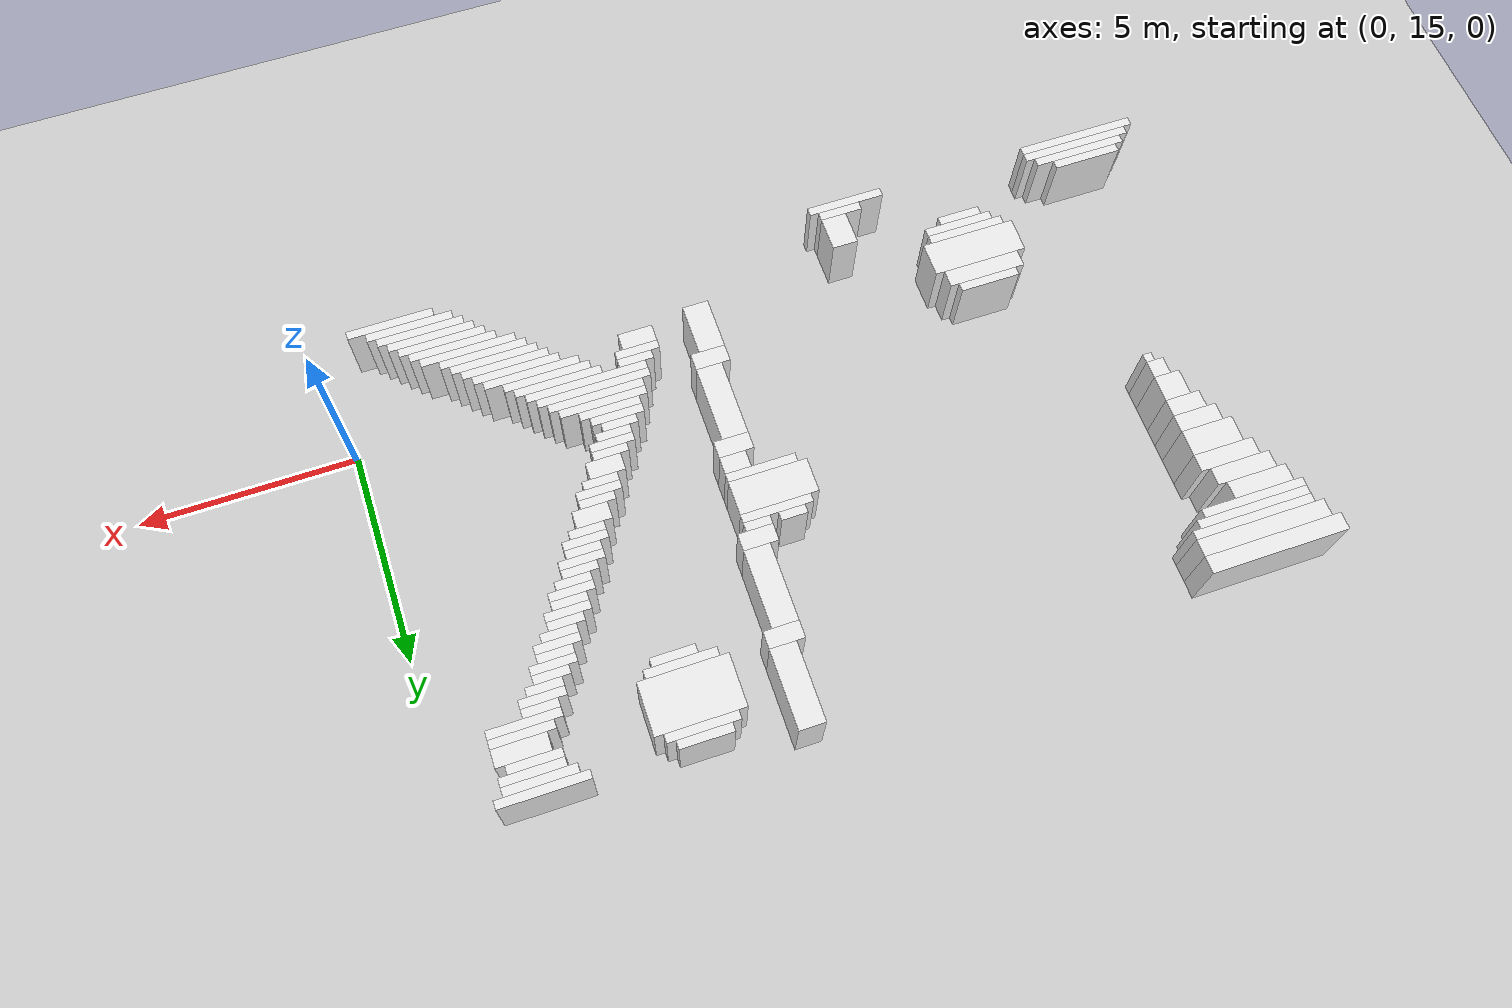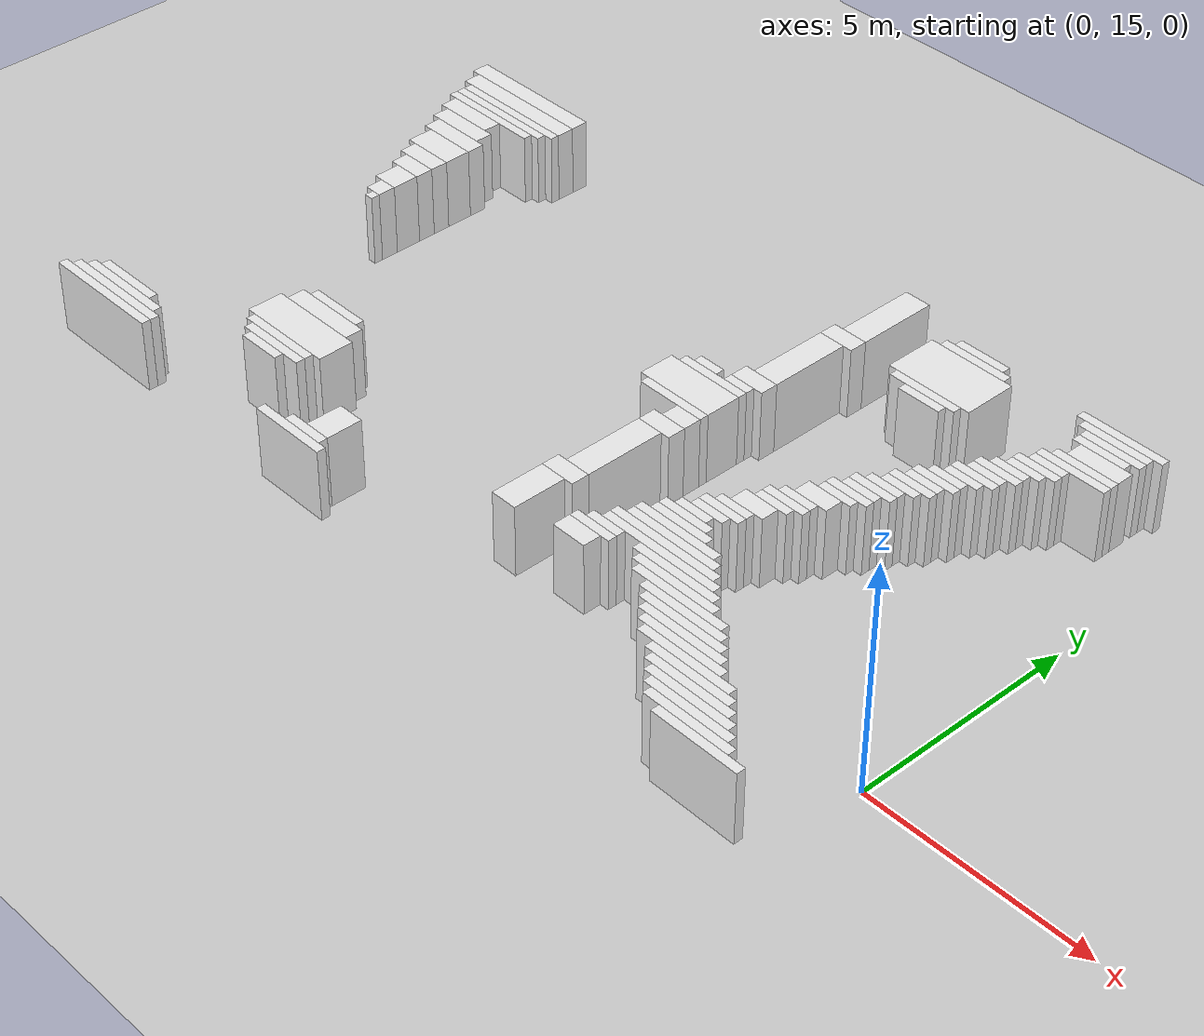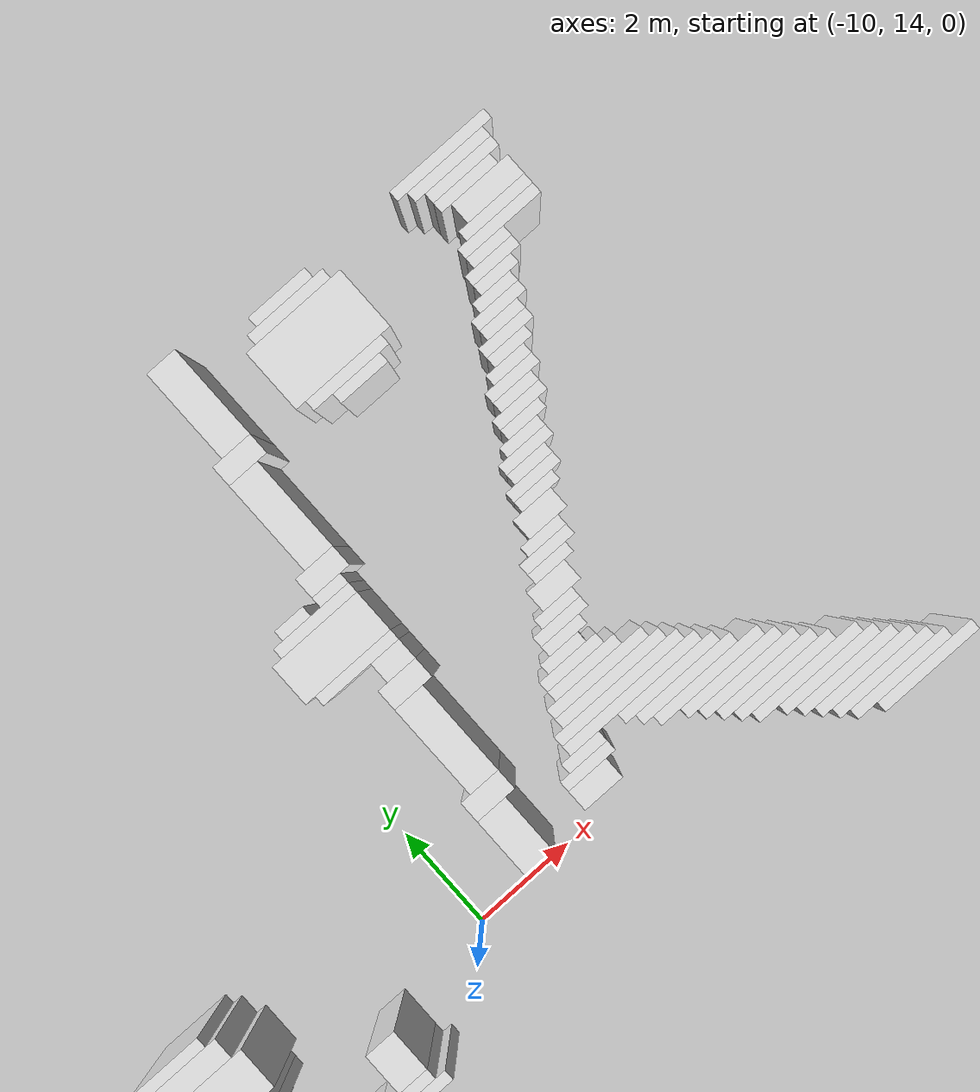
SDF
<sdf version="1.7">
 <world name="default">
  <model name="ground_plane">
   <static>1</static>
   <link name="link">
    <collision name="collision">
     <geometry><plane><normal>0 0 1</normal><size>120 120</size></plane></geometry>
    </collision>
    <visual name="visual">
     <geometry><plane><normal>0 0 1</normal><size>120 120</size></plane></geometry>
     <material>
      <script><uri>file://media/materials/scripts/gazebo.material</uri><name>Gazebo/Grey</name></script>
     </material>
    </visual>
   </link>
  </model>
  <model name="random_complex_03_model">
   <static>1</static>
   <link name="obs_769">
    <pose>-5.4000 23.9000 0.8000 0 0 0</pose>
    <collision name="obs_769_col"><geometry><box><size>1.2000 0.2000 1.6000</size></box></geometry></collision>
    <visual name="obs_769_vis">
     <geometry><box><size>1.2000 0.2000 1.6000</size></box></geometry>
     <material>
      <script><uri>file://media/materials/scripts/gazebo.material</uri><name>Gazebo/White</name></script>
     </material>
    </visual>
   </link>
   <link name="obs_770">
    <pose>-2.0000 23.9000 0.8000 0 0 0</pose>
    <collision name="obs_770_col"><geometry><box><size>2.0000 0.2000 1.6000</size></box></geometry></collision>
    <visual name="obs_770_vis">
     <geometry><box><size>2.0000 0.2000 1.6000</size></box></geometry>
     <material>
      <script><uri>file://media/materials/scripts/gazebo.material</uri><name>Gazebo/White</name></script>
     </material>
    </visual>
   </link>
   <link name="obs_775">
    <pose>-18.2000 23.8000 0.8000 0 0 0</pose>
    <collision name="obs_775_col"><geometry><box><size>3.2000 0.4000 1.6000</size></box></geometry></collision>
    <visual name="obs_775_vis">
     <geometry><box><size>3.2000 0.4000 1.6000</size></box></geometry>
     <material>
      <script><uri>file://media/materials/scripts/gazebo.material</uri><name>Gazebo/White</name></script>
     </material>
    </visual>
   </link>
   <link name="obs_778">
    <pose>-5.4000 23.7000 0.8000 0 0 0</pose>
    <collision name="obs_778_col"><geometry><box><size>1.6000 0.2000 1.6000</size></box></geometry></collision>
    <visual name="obs_778_vis">
     <geometry><box><size>1.6000 0.2000 1.6000</size></box></geometry>
     <material>
      <script><uri>file://media/materials/scripts/gazebo.material</uri><name>Gazebo/White</name></script>
     </material>
    </visual>
   </link>
   <link name="obs_779">
    <pose>-2.0000 23.7000 0.8000 0 0 0</pose>
    <collision name="obs_779_col"><geometry><box><size>1.6000 0.2000 1.6000</size></box></geometry></collision>
    <visual name="obs_779_vis">
     <geometry><box><size>1.6000 0.2000 1.6000</size></box></geometry>
     <material>
      <script><uri>file://media/materials/scripts/gazebo.material</uri><name>Gazebo/White</name></script>
     </material>
    </visual>
   </link>
   <link name="obs_783">
    <pose>-1.9000 23.5000 0.8000 0 0 0</pose>
    <collision name="obs_783_col"><geometry><box><size>1.4000 0.2000 1.6000</size></box></geometry></collision>
    <visual name="obs_783_vis">
     <geometry><box><size>1.4000 0.2000 1.6000</size></box></geometry>
     <material>
      <script><uri>file://media/materials/scripts/gazebo.material</uri><name>Gazebo/White</name></script>
     </material>
    </visual>
   </link>
   <link name="obs_790">
    <pose>-18.1000 23.4000 0.8000 0 0 0</pose>
    <collision name="obs_790_col"><geometry><box><size>3.0000 0.4000 1.6000</size></box></geometry></collision>
    <visual name="obs_790_vis">
     <geometry><box><size>3.0000 0.4000 1.6000</size></box></geometry>
     <material>
      <script><uri>file://media/materials/scripts/gazebo.material</uri><name>Gazebo/White</name></script>
     </material>
    </visual>
   </link>
   <link name="obs_792">
    <pose>-2.0000 23.3000 0.8000 0 0 0</pose>
    <collision name="obs_792_col"><geometry><box><size>1.2000 0.2000 1.6000</size></box></geometry></collision>
    <visual name="obs_792_vis">
     <geometry><box><size>1.2000 0.2000 1.6000</size></box></geometry>
     <material>
      <script><uri>file://media/materials/scripts/gazebo.material</uri><name>Gazebo/White</name></script>
     </material>
    </visual>
   </link>
   <link name="obs_801">
    <pose>-18.0000 23.1000 0.8000 0 0 0</pose>
    <collision name="obs_801_col"><geometry><box><size>2.8000 0.2000 1.6000</size></box></geometry></collision>
    <visual name="obs_801_vis">
     <geometry><box><size>2.8000 0.2000 1.6000</size></box></geometry>
     <material>
      <script><uri>file://media/materials/scripts/gazebo.material</uri><name>Gazebo/White</name></script>
     </material>
    </visual>
   </link>
   <link name="obs_806">
    <pose>-1.8000 23.0000 0.8000 0 0 0</pose>
    <collision name="obs_806_col"><geometry><box><size>1.2000 0.4000 1.6000</size></box></geometry></collision>
    <visual name="obs_806_vis">
     <geometry><box><size>1.2000 0.4000 1.6000</size></box></geometry>
     <material>
      <script><uri>file://media/materials/scripts/gazebo.material</uri><name>Gazebo/White</name></script>
     </material>
    </visual>
   </link>
   <link name="obs_809">
    <pose>-18.1000 22.9000 0.8000 0 0 0</pose>
    <collision name="obs_809_col"><geometry><box><size>2.6000 0.2000 1.6000</size></box></geometry></collision>
    <visual name="obs_809_vis">
     <geometry><box><size>2.6000 0.2000 1.6000</size></box></geometry>
     <material>
      <script><uri>file://media/materials/scripts/gazebo.material</uri><name>Gazebo/White</name></script>
     </material>
    </visual>
   </link>
   <link name="obs_815">
    <pose>-7.5000 23.5000 0.8000 0 0 0</pose>
    <collision name="obs_815_col"><geometry><box><size>0.6000 1.8000 1.6000</size></box></geometry></collision>
    <visual name="obs_815_vis">
     <geometry><box><size>0.6000 1.8000 1.6000</size></box></geometry>
     <material>
      <script><uri>file://media/materials/scripts/gazebo.material</uri><name>Gazebo/White</name></script>
     </material>
    </visual>
   </link>
   <link name="obs_819">
    <pose>-18.2000 22.7000 0.8000 0 0 0</pose>
    <collision name="obs_819_col"><geometry><box><size>2.4000 0.2000 1.6000</size></box></geometry></collision>
    <visual name="obs_819_vis">
     <geometry><box><size>2.4000 0.2000 1.6000</size></box></geometry>
     <material>
      <script><uri>file://media/materials/scripts/gazebo.material</uri><name>Gazebo/White</name></script>
     </material>
    </visual>
   </link>
   <link name="obs_820">
    <pose>-1.9000 22.7000 0.8000 0 0 0</pose>
    <collision name="obs_820_col"><geometry><box><size>1.4000 0.2000 1.6000</size></box></geometry></collision>
    <visual name="obs_820_vis">
     <geometry><box><size>1.4000 0.2000 1.6000</size></box></geometry>
     <material>
      <script><uri>file://media/materials/scripts/gazebo.material</uri><name>Gazebo/White</name></script>
     </material>
    </visual>
   </link>
   <link name="obs_826">
    <pose>-5.4000 23.0000 0.8000 0 0 0</pose>
    <collision name="obs_826_col"><geometry><box><size>2.0000 1.2000 1.6000</size></box></geometry></collision>
    <visual name="obs_826_vis">
     <geometry><box><size>2.0000 1.2000 1.6000</size></box></geometry>
     <material>
      <script><uri>file://media/materials/scripts/gazebo.material</uri><name>Gazebo/White</name></script>
     </material>
    </visual>
   </link>
   <link name="obs_829">
    <pose>-2.0000 22.5000 0.8000 0 0 0</pose>
    <collision name="obs_829_col"><geometry><box><size>1.6000 0.2000 1.6000</size></box></geometry></collision>
    <visual name="obs_829_vis">
     <geometry><box><size>1.6000 0.2000 1.6000</size></box></geometry>
     <material>
      <script><uri>file://media/materials/scripts/gazebo.material</uri><name>Gazebo/White</name></script>
     </material>
    </visual>
   </link>
   <link name="obs_834">
    <pose>-18.5000 22.4000 0.8000 0 0 0</pose>
    <collision name="obs_834_col"><geometry><box><size>1.4000 0.4000 1.6000</size></box></geometry></collision>
    <visual name="obs_834_vis">
     <geometry><box><size>1.4000 0.4000 1.6000</size></box></geometry>
     <material>
      <script><uri>file://media/materials/scripts/gazebo.material</uri><name>Gazebo/White</name></script>
     </material>
    </visual>
   </link>
   <link name="obs_835">
    <pose>-7.6000 22.4000 0.8000 0 0 0</pose>
    <collision name="obs_835_col"><geometry><box><size>0.8000 0.4000 1.6000</size></box></geometry></collision>
    <visual name="obs_835_vis">
     <geometry><box><size>0.8000 0.4000 1.6000</size></box></geometry>
     <material>
      <script><uri>file://media/materials/scripts/gazebo.material</uri><name>Gazebo/White</name></script>
     </material>
    </visual>
   </link>
   <link name="obs_838">
    <pose>-5.4000 22.3000 0.8000 0 0 0</pose>
    <collision name="obs_838_col"><geometry><box><size>1.6000 0.2000 1.6000</size></box></geometry></collision>
    <visual name="obs_838_vis">
     <geometry><box><size>1.6000 0.2000 1.6000</size></box></geometry>
     <material>
      <script><uri>file://media/materials/scripts/gazebo.material</uri><name>Gazebo/White</name></script>
     </material>
    </visual>
   </link>
   <link name="obs_839">
    <pose>-2.4000 22.3000 0.8000 0 0 0</pose>
    <collision name="obs_839_col"><geometry><box><size>0.8000 0.2000 1.6000</size></box></geometry></collision>
    <visual name="obs_839_vis">
     <geometry><box><size>0.8000 0.2000 1.6000</size></box></geometry>
     <material>
      <script><uri>file://media/materials/scripts/gazebo.material</uri><name>Gazebo/White</name></script>
     </material>
    </visual>
   </link>
   <link name="obs_846">
    <pose>-5.3000 22.1000 0.8000 0 0 0</pose>
    <collision name="obs_846_col"><geometry><box><size>1.0000 0.2000 1.6000</size></box></geometry></collision>
    <visual name="obs_846_vis">
     <geometry><box><size>1.0000 0.2000 1.6000</size></box></geometry>
     <material>
      <script><uri>file://media/materials/scripts/gazebo.material</uri><name>Gazebo/White</name></script>
     </material>
    </visual>
   </link>
   <link name="obs_847">
    <pose>-2.5000 22.1000 0.8000 0 0 0</pose>
    <collision name="obs_847_col"><geometry><box><size>1.0000 0.2000 1.6000</size></box></geometry></collision>
    <visual name="obs_847_vis">
     <geometry><box><size>1.0000 0.2000 1.6000</size></box></geometry>
     <material>
      <script><uri>file://media/materials/scripts/gazebo.material</uri><name>Gazebo/White</name></script>
     </material>
    </visual>
   </link>
   <link name="obs_853">
    <pose>-18.3000 22.0000 0.8000 0 0 0</pose>
    <collision name="obs_853_col"><geometry><box><size>1.4000 0.4000 1.6000</size></box></geometry></collision>
    <visual name="obs_853_vis">
     <geometry><box><size>1.4000 0.4000 1.6000</size></box></geometry>
     <material>
      <script><uri>file://media/materials/scripts/gazebo.material</uri><name>Gazebo/White</name></script>
     </material>
    </visual>
   </link>
   <link name="obs_856">
    <pose>-2.6000 21.9000 0.8000 0 0 0</pose>
    <collision name="obs_856_col"><geometry><box><size>0.8000 0.2000 1.6000</size></box></geometry></collision>
    <visual name="obs_856_vis">
     <geometry><box><size>0.8000 0.2000 1.6000</size></box></geometry>
     <material>
      <script><uri>file://media/materials/scripts/gazebo.material</uri><name>Gazebo/White</name></script>
     </material>
    </visual>
   </link>
   <link name="obs_865">
    <pose>-2.8000 21.7000 0.8000 0 0 0</pose>
    <collision name="obs_865_col"><geometry><box><size>0.8000 0.2000 1.6000</size></box></geometry></collision>
    <visual name="obs_865_vis">
     <geometry><box><size>0.8000 0.2000 1.6000</size></box></geometry>
     <material>
      <script><uri>file://media/materials/scripts/gazebo.material</uri><name>Gazebo/White</name></script>
     </material>
    </visual>
   </link>
   <link name="obs_870">
    <pose>-18.1000 21.6000 0.8000 0 0 0</pose>
    <collision name="obs_870_col"><geometry><box><size>1.4000 0.4000 1.6000</size></box></geometry></collision>
    <visual name="obs_870_vis">
     <geometry><box><size>1.4000 0.4000 1.6000</size></box></geometry>
     <material>
      <script><uri>file://media/materials/scripts/gazebo.material</uri><name>Gazebo/White</name></script>
     </material>
    </visual>
   </link>
   <link name="obs_874">
    <pose>-2.9000 21.5000 0.8000 0 0 0</pose>
    <collision name="obs_874_col"><geometry><box><size>1.0000 0.2000 1.6000</size></box></geometry></collision>
    <visual name="obs_874_vis">
     <geometry><box><size>1.0000 0.2000 1.6000</size></box></geometry>
     <material>
      <script><uri>file://media/materials/scripts/gazebo.material</uri><name>Gazebo/White</name></script>
     </material>
    </visual>
   </link>
   <link name="obs_882">
    <pose>-3.0000 21.3000 0.8000 0 0 0</pose>
    <collision name="obs_882_col"><geometry><box><size>0.8000 0.2000 1.6000</size></box></geometry></collision>
    <visual name="obs_882_vis">
     <geometry><box><size>0.8000 0.2000 1.6000</size></box></geometry>
     <material>
      <script><uri>file://media/materials/scripts/gazebo.material</uri><name>Gazebo/White</name></script>
     </material>
    </visual>
   </link>
   <link name="obs_892">
    <pose>-3.1000 21.1000 0.8000 0 0 0</pose>
    <collision name="obs_892_col"><geometry><box><size>1.0000 0.2000 1.6000</size></box></geometry></collision>
    <visual name="obs_892_vis">
     <geometry><box><size>1.0000 0.2000 1.6000</size></box></geometry>
     <material>
      <script><uri>file://media/materials/scripts/gazebo.material</uri><name>Gazebo/White</name></script>
     </material>
    </visual>
   </link>
   <link name="obs_899">
    <pose>-18.0000 21.1000 0.8000 0 0 0</pose>
    <collision name="obs_899_col"><geometry><box><size>1.2000 0.6000 1.6000</size></box></geometry></collision>
    <visual name="obs_899_vis">
     <geometry><box><size>1.2000 0.6000 1.6000</size></box></geometry>
     <material>
      <script><uri>file://media/materials/scripts/gazebo.material</uri><name>Gazebo/White</name></script>
     </material>
    </visual>
   </link>
   <link name="obs_903">
    <pose>-3.2000 20.9000 0.8000 0 0 0</pose>
    <collision name="obs_903_col"><geometry><box><size>0.8000 0.2000 1.6000</size></box></geometry></collision>
    <visual name="obs_903_vis">
     <geometry><box><size>0.8000 0.2000 1.6000</size></box></geometry>
     <material>
      <script><uri>file://media/materials/scripts/gazebo.material</uri><name>Gazebo/White</name></script>
     </material>
    </visual>
   </link>
   <link name="obs_914">
    <pose>-3.4000 20.7000 0.8000 0 0 0</pose>
    <collision name="obs_914_col"><geometry><box><size>0.8000 0.2000 1.6000</size></box></geometry></collision>
    <visual name="obs_914_vis">
     <geometry><box><size>0.8000 0.2000 1.6000</size></box></geometry>
     <material>
      <script><uri>file://media/materials/scripts/gazebo.material</uri><name>Gazebo/White</name></script>
     </material>
    </visual>
   </link>
   <link name="obs_921">
    <pose>-7.7000 21.3000 0.8000 0 0 0</pose>
    <collision name="obs_921_col"><geometry><box><size>0.6000 1.8000 1.6000</size></box></geometry></collision>
    <visual name="obs_921_vis">
     <geometry><box><size>0.6000 1.8000 1.6000</size></box></geometry>
     <material>
      <script><uri>file://media/materials/scripts/gazebo.material</uri><name>Gazebo/White</name></script>
     </material>
    </visual>
   </link>
   <link name="obs_923">
    <pose>-17.9000 20.6000 0.8000 0 0 0</pose>
    <collision name="obs_923_col"><geometry><box><size>1.0000 0.4000 1.6000</size></box></geometry></collision>
    <visual name="obs_923_vis">
     <geometry><box><size>1.0000 0.4000 1.6000</size></box></geometry>
     <material>
      <script><uri>file://media/materials/scripts/gazebo.material</uri><name>Gazebo/White</name></script>
     </material>
    </visual>
   </link>
   <link name="obs_925">
    <pose>-3.5000 20.5000 0.8000 0 0 0</pose>
    <collision name="obs_925_col"><geometry><box><size>1.0000 0.2000 1.6000</size></box></geometry></collision>
    <visual name="obs_925_vis">
     <geometry><box><size>1.0000 0.2000 1.6000</size></box></geometry>
     <material>
      <script><uri>file://media/materials/scripts/gazebo.material</uri><name>Gazebo/White</name></script>
     </material>
    </visual>
   </link>
   <link name="obs_936">
    <pose>-3.6000 20.3000 0.8000 0 0 0</pose>
    <collision name="obs_936_col"><geometry><box><size>0.8000 0.2000 1.6000</size></box></geometry></collision>
    <visual name="obs_936_vis">
     <geometry><box><size>0.8000 0.2000 1.6000</size></box></geometry>
     <material>
      <script><uri>file://media/materials/scripts/gazebo.material</uri><name>Gazebo/White</name></script>
     </material>
    </visual>
   </link>
   <link name="obs_942">
    <pose>-17.8000 20.2000 0.8000 0 0 0</pose>
    <collision name="obs_942_col"><geometry><box><size>0.8000 0.4000 1.6000</size></box></geometry></collision>
    <visual name="obs_942_vis">
     <geometry><box><size>0.8000 0.4000 1.6000</size></box></geometry>
     <material>
      <script><uri>file://media/materials/scripts/gazebo.material</uri><name>Gazebo/White</name></script>
     </material>
    </visual>
   </link>
   <link name="obs_943">
    <pose>-7.8000 20.2000 0.8000 0 0 0</pose>
    <collision name="obs_943_col"><geometry><box><size>0.8000 0.4000 1.6000</size></box></geometry></collision>
    <visual name="obs_943_vis">
     <geometry><box><size>0.8000 0.4000 1.6000</size></box></geometry>
     <material>
      <script><uri>file://media/materials/scripts/gazebo.material</uri><name>Gazebo/White</name></script>
     </material>
    </visual>
   </link>
   <link name="obs_947">
    <pose>-3.7000 20.1000 0.8000 0 0 0</pose>
    <collision name="obs_947_col"><geometry><box><size>1.0000 0.2000 1.6000</size></box></geometry></collision>
    <visual name="obs_947_vis">
     <geometry><box><size>1.0000 0.2000 1.6000</size></box></geometry>
     <material>
      <script><uri>file://media/materials/scripts/gazebo.material</uri><name>Gazebo/White</name></script>
     </material>
    </visual>
   </link>
   <link name="obs_957">
    <pose>-8.7000 19.9000 0.8000 0 0 0</pose>
    <collision name="obs_957_col"><geometry><box><size>0.6000 0.2000 1.6000</size></box></geometry></collision>
    <visual name="obs_957_vis">
     <geometry><box><size>0.6000 0.2000 1.6000</size></box></geometry>
     <material>
      <script><uri>file://media/materials/scripts/gazebo.material</uri><name>Gazebo/White</name></script>
     </material>
    </visual>
   </link>
   <link name="obs_958">
    <pose>-7.9000 19.9000 0.8000 0 0 0</pose>
    <collision name="obs_958_col"><geometry><box><size>0.6000 0.2000 1.6000</size></box></geometry></collision>
    <visual name="obs_958_vis">
     <geometry><box><size>0.6000 0.2000 1.6000</size></box></geometry>
     <material>
      <script><uri>file://media/materials/scripts/gazebo.material</uri><name>Gazebo/White</name></script>
     </material>
    </visual>
   </link>
   <link name="obs_959">
    <pose>-3.8000 19.9000 0.8000 0 0 0</pose>
    <collision name="obs_959_col"><geometry><box><size>0.8000 0.2000 1.6000</size></box></geometry></collision>
    <visual name="obs_959_vis">
     <geometry><box><size>0.8000 0.2000 1.6000</size></box></geometry>
     <material>
      <script><uri>file://media/materials/scripts/gazebo.material</uri><name>Gazebo/White</name></script>
     </material>
    </visual>
   </link>
   <link name="obs_968">
    <pose>-8.4000 19.7000 0.8000 0 0 0</pose>
    <collision name="obs_968_col"><geometry><box><size>1.6000 0.2000 1.6000</size></box></geometry></collision>
    <visual name="obs_968_vis">
     <geometry><box><size>1.6000 0.2000 1.6000</size></box></geometry>
     <material>
      <script><uri>file://media/materials/scripts/gazebo.material</uri><name>Gazebo/White</name></script>
     </material>
    </visual>
   </link>
   <link name="obs_969">
    <pose>-4.0000 19.7000 0.8000 0 0 0</pose>
    <collision name="obs_969_col"><geometry><box><size>0.8000 0.2000 1.6000</size></box></geometry></collision>
    <visual name="obs_969_vis">
     <geometry><box><size>0.8000 0.2000 1.6000</size></box></geometry>
     <material>
      <script><uri>file://media/materials/scripts/gazebo.material</uri><name>Gazebo/White</name></script>
     </material>
    </visual>
   </link>
   <link name="obs_977">
    <pose>-17.7000 19.7000 0.8000 0 0 0</pose>
    <collision name="obs_977_col"><geometry><box><size>0.6000 0.6000 1.6000</size></box></geometry></collision>
    <visual name="obs_977_vis">
     <geometry><box><size>0.6000 0.6000 1.6000</size></box></geometry>
     <material>
      <script><uri>file://media/materials/scripts/gazebo.material</uri><name>Gazebo/White</name></script>
     </material>
    </visual>
   </link>
   <link name="obs_981">
    <pose>-4.1000 19.5000 0.8000 0 0 0</pose>
    <collision name="obs_981_col"><geometry><box><size>1.0000 0.2000 1.6000</size></box></geometry></collision>
    <visual name="obs_981_vis">
     <geometry><box><size>1.0000 0.2000 1.6000</size></box></geometry>
     <material>
      <script><uri>file://media/materials/scripts/gazebo.material</uri><name>Gazebo/White</name></script>
     </material>
    </visual>
   </link>
   <link name="obs_991">
    <pose>-4.2000 19.3000 0.8000 0 0 0</pose>
    <collision name="obs_991_col"><geometry><box><size>0.8000 0.2000 1.6000</size></box></geometry></collision>
    <visual name="obs_991_vis">
     <geometry><box><size>0.8000 0.2000 1.6000</size></box></geometry>
     <material>
      <script><uri>file://media/materials/scripts/gazebo.material</uri><name>Gazebo/White</name></script>
     </material>
    </visual>
   </link>
   <link name="obs_998">
    <pose>-17.6000 19.2000 0.8000 0 0 0</pose>
    <collision name="obs_998_col"><geometry><box><size>0.4000 0.4000 1.6000</size></box></geometry></collision>
    <visual name="obs_998_vis">
     <geometry><box><size>0.4000 0.4000 1.6000</size></box></geometry>
     <material>
      <script><uri>file://media/materials/scripts/gazebo.material</uri><name>Gazebo/White</name></script>
     </material>
    </visual>
   </link>
   <link name="obs_1002">
    <pose>-4.3000 19.1000 0.8000 0 0 0</pose>
    <collision name="obs_1002_col"><geometry><box><size>1.0000 0.2000 1.6000</size></box></geometry></collision>
    <visual name="obs_1002_vis">
     <geometry><box><size>1.0000 0.2000 1.6000</size></box></geometry>
     <material>
      <script><uri>file://media/materials/scripts/gazebo.material</uri><name>Gazebo/White</name></script>
     </material>
    </visual>
   </link>
   <link name="obs_1008">
    <pose>-8.5000 19.2000 0.8000 0 0 0</pose>
    <collision name="obs_1008_col"><geometry><box><size>1.8000 0.8000 1.6000</size></box></geometry></collision>
    <visual name="obs_1008_vis">
     <geometry><box><size>1.8000 0.8000 1.6000</size></box></geometry>
     <material>
      <script><uri>file://media/materials/scripts/gazebo.material</uri><name>Gazebo/White</name></script>
     </material>
    </visual>
   </link>
   <link name="obs_1010">
    <pose>-17.5000 18.9000 0.8000 0 0 0</pose>
    <collision name="obs_1010_col"><geometry><box><size>0.2000 0.2000 1.6000</size></box></geometry></collision>
    <visual name="obs_1010_vis">
     <geometry><box><size>0.2000 0.2000 1.6000</size></box></geometry>
     <material>
      <script><uri>file://media/materials/scripts/gazebo.material</uri><name>Gazebo/White</name></script>
     </material>
    </visual>
   </link>
   <link name="obs_1011">
    <pose>-4.4000 18.9000 0.8000 0 0 0</pose>
    <collision name="obs_1011_col"><geometry><box><size>0.8000 0.2000 1.6000</size></box></geometry></collision>
    <visual name="obs_1011_vis">
     <geometry><box><size>0.8000 0.2000 1.6000</size></box></geometry>
     <material>
      <script><uri>file://media/materials/scripts/gazebo.material</uri><name>Gazebo/White</name></script>
     </material>
    </visual>
   </link>
   <link name="obs_1019">
    <pose>-8.4000 18.7000 0.8000 0 0 0</pose>
    <collision name="obs_1019_col"><geometry><box><size>1.6000 0.2000 1.6000</size></box></geometry></collision>
    <visual name="obs_1019_vis">
     <geometry><box><size>1.6000 0.2000 1.6000</size></box></geometry>
     <material>
      <script><uri>file://media/materials/scripts/gazebo.material</uri><name>Gazebo/White</name></script>
     </material>
    </visual>
   </link>
   <link name="obs_1027">
    <pose>-4.6000 18.6000 0.8000 0 0 0</pose>
    <collision name="obs_1027_col"><geometry><box><size>0.8000 0.4000 1.6000</size></box></geometry></collision>
    <visual name="obs_1027_vis">
     <geometry><box><size>0.8000 0.4000 1.6000</size></box></geometry>
     <material>
      <script><uri>file://media/materials/scripts/gazebo.material</uri><name>Gazebo/White</name></script>
     </material>
    </visual>
   </link>
   <link name="obs_1036">
    <pose>-7.9000 18.4000 0.8000 0 0 0</pose>
    <collision name="obs_1036_col"><geometry><box><size>0.6000 0.4000 1.6000</size></box></geometry></collision>
    <visual name="obs_1036_vis">
     <geometry><box><size>0.6000 0.4000 1.6000</size></box></geometry>
     <material>
      <script><uri>file://media/materials/scripts/gazebo.material</uri><name>Gazebo/White</name></script>
     </material>
    </visual>
   </link>
   <link name="obs_1039">
    <pose>-4.8000 18.3000 0.8000 0 0 0</pose>
    <collision name="obs_1039_col"><geometry><box><size>0.8000 0.2000 1.6000</size></box></geometry></collision>
    <visual name="obs_1039_vis">
     <geometry><box><size>0.8000 0.2000 1.6000</size></box></geometry>
     <material>
      <script><uri>file://media/materials/scripts/gazebo.material</uri><name>Gazebo/White</name></script>
     </material>
    </visual>
   </link>
   <link name="obs_1047">
    <pose>-4.9000 18.1000 0.8000 0 0 0</pose>
    <collision name="obs_1047_col"><geometry><box><size>1.0000 0.2000 1.6000</size></box></geometry></collision>
    <visual name="obs_1047_vis">
     <geometry><box><size>1.0000 0.2000 1.6000</size></box></geometry>
     <material>
      <script><uri>file://media/materials/scripts/gazebo.material</uri><name>Gazebo/White</name></script>
     </material>
    </visual>
   </link>
   <link name="obs_1054">
    <pose>-8.0000 18.0000 0.8000 0 0 0</pose>
    <collision name="obs_1054_col"><geometry><box><size>0.8000 0.4000 1.6000</size></box></geometry></collision>
    <visual name="obs_1054_vis">
     <geometry><box><size>0.8000 0.4000 1.6000</size></box></geometry>
     <material>
      <script><uri>file://media/materials/scripts/gazebo.material</uri><name>Gazebo/White</name></script>
     </material>
    </visual>
   </link>
   <link name="obs_1058">
    <pose>-5.0000 17.9000 0.8000 0 0 0</pose>
    <collision name="obs_1058_col"><geometry><box><size>0.8000 0.2000 1.6000</size></box></geometry></collision>
    <visual name="obs_1058_vis">
     <geometry><box><size>0.8000 0.2000 1.6000</size></box></geometry>
     <material>
      <script><uri>file://media/materials/scripts/gazebo.material</uri><name>Gazebo/White</name></script>
     </material>
    </visual>
   </link>
   <link name="obs_1074">
    <pose>-5.2000 17.6000 0.8000 0 0 0</pose>
    <collision name="obs_1074_col"><geometry><box><size>0.8000 0.4000 1.6000</size></box></geometry></collision>
    <visual name="obs_1074_vis">
     <geometry><box><size>0.8000 0.4000 1.6000</size></box></geometry>
     <material>
      <script><uri>file://media/materials/scripts/gazebo.material</uri><name>Gazebo/White</name></script>
     </material>
    </visual>
   </link>
   <link name="obs_1084">
    <pose>-5.4000 17.3000 0.8000 0 0 0</pose>
    <collision name="obs_1084_col"><geometry><box><size>0.8000 0.2000 1.6000</size></box></geometry></collision>
    <visual name="obs_1084_vis">
     <geometry><box><size>0.8000 0.2000 1.6000</size></box></geometry>
     <material>
      <script><uri>file://media/materials/scripts/gazebo.material</uri><name>Gazebo/White</name></script>
     </material>
    </visual>
   </link>
   <link name="obs_1092">
    <pose>-5.5000 17.1000 0.8000 0 0 0</pose>
    <collision name="obs_1092_col"><geometry><box><size>1.0000 0.2000 1.6000</size></box></geometry></collision>
    <visual name="obs_1092_vis">
     <geometry><box><size>1.0000 0.2000 1.6000</size></box></geometry>
     <material>
      <script><uri>file://media/materials/scripts/gazebo.material</uri><name>Gazebo/White</name></script>
     </material>
    </visual>
   </link>
   <link name="obs_1099">
    <pose>-5.6000 16.9000 0.8000 0 0 0</pose>
    <collision name="obs_1099_col"><geometry><box><size>0.8000 0.2000 1.6000</size></box></geometry></collision>
    <visual name="obs_1099_vis">
     <geometry><box><size>0.8000 0.2000 1.6000</size></box></geometry>
     <material>
      <script><uri>file://media/materials/scripts/gazebo.material</uri><name>Gazebo/White</name></script>
     </material>
    </visual>
   </link>
   <link name="obs_1105">
    <pose>-5.8000 16.7000 0.8000 0 0 0</pose>
    <collision name="obs_1105_col"><geometry><box><size>0.8000 0.2000 1.6000</size></box></geometry></collision>
    <visual name="obs_1105_vis">
     <geometry><box><size>0.8000 0.2000 1.6000</size></box></geometry>
     <material>
      <script><uri>file://media/materials/scripts/gazebo.material</uri><name>Gazebo/White</name></script>
     </material>
    </visual>
   </link>
   <link name="obs_1112">
    <pose>-5.8000 16.5000 0.8000 0 0 0</pose>
    <collision name="obs_1112_col"><geometry><box><size>1.2000 0.2000 1.6000</size></box></geometry></collision>
    <visual name="obs_1112_vis">
     <geometry><box><size>1.2000 0.2000 1.6000</size></box></geometry>
     <material>
      <script><uri>file://media/materials/scripts/gazebo.material</uri><name>Gazebo/White</name></script>
     </material>
    </visual>
   </link>
   <link name="obs_1118">
    <pose>-5.7000 16.3000 0.8000 0 0 0</pose>
    <collision name="obs_1118_col"><geometry><box><size>1.4000 0.2000 1.6000</size></box></geometry></collision>
    <visual name="obs_1118_vis">
     <geometry><box><size>1.4000 0.2000 1.6000</size></box></geometry>
     <material>
      <script><uri>file://media/materials/scripts/gazebo.material</uri><name>Gazebo/White</name></script>
     </material>
    </visual>
   </link>
   <link name="obs_1121">
    <pose>-8.1000 16.9000 0.8000 0 0 0</pose>
    <collision name="obs_1121_col"><geometry><box><size>0.6000 1.8000 1.6000</size></box></geometry></collision>
    <visual name="obs_1121_vis">
     <geometry><box><size>0.6000 1.8000 1.6000</size></box></geometry>
     <material>
      <script><uri>file://media/materials/scripts/gazebo.material</uri><name>Gazebo/White</name></script>
     </material>
    </visual>
   </link>
   <link name="obs_1124">
    <pose>-5.6000 16.1000 0.8000 0 0 0</pose>
    <collision name="obs_1124_col"><geometry><box><size>2.0000 0.2000 1.6000</size></box></geometry></collision>
    <visual name="obs_1124_vis">
     <geometry><box><size>2.0000 0.2000 1.6000</size></box></geometry>
     <material>
      <script><uri>file://media/materials/scripts/gazebo.material</uri><name>Gazebo/White</name></script>
     </material>
    </visual>
   </link>
   <link name="obs_1130">
    <pose>-14.9000 15.9000 0.8000 0 0 0</pose>
    <collision name="obs_1130_col"><geometry><box><size>1.4000 0.2000 1.6000</size></box></geometry></collision>
    <visual name="obs_1130_vis">
     <geometry><box><size>1.4000 0.2000 1.6000</size></box></geometry>
     <material>
      <script><uri>file://media/materials/scripts/gazebo.material</uri><name>Gazebo/White</name></script>
     </material>
    </visual>
   </link>
   <link name="obs_1131">
    <pose>-5.5000 15.9000 0.8000 0 0 0</pose>
    <collision name="obs_1131_col"><geometry><box><size>2.2000 0.2000 1.6000</size></box></geometry></collision>
    <visual name="obs_1131_vis">
     <geometry><box><size>2.2000 0.2000 1.6000</size></box></geometry>
     <material>
      <script><uri>file://media/materials/scripts/gazebo.material</uri><name>Gazebo/White</name></script>
     </material>
    </visual>
   </link>
   <link name="obs_1135">
    <pose>-8.2000 15.8000 0.8000 0 0 0</pose>
    <collision name="obs_1135_col"><geometry><box><size>0.8000 0.4000 1.6000</size></box></geometry></collision>
    <visual name="obs_1135_vis">
     <geometry><box><size>0.8000 0.4000 1.6000</size></box></geometry>
     <material>
      <script><uri>file://media/materials/scripts/gazebo.material</uri><name>Gazebo/White</name></script>
     </material>
    </visual>
   </link>
   <link name="obs_1137">
    <pose>-5.5000 15.7000 0.8000 0 0 0</pose>
    <collision name="obs_1137_col"><geometry><box><size>2.6000 0.2000 1.6000</size></box></geometry></collision>
    <visual name="obs_1137_vis">
     <geometry><box><size>2.6000 0.2000 1.6000</size></box></geometry>
     <material>
      <script><uri>file://media/materials/scripts/gazebo.material</uri><name>Gazebo/White</name></script>
     </material>
    </visual>
   </link>
   <link name="obs_1139">
    <pose>-14.9000 15.6000 0.8000 0 0 0</pose>
    <collision name="obs_1139_col"><geometry><box><size>1.8000 0.4000 1.6000</size></box></geometry></collision>
    <visual name="obs_1139_vis">
     <geometry><box><size>1.8000 0.4000 1.6000</size></box></geometry>
     <material>
      <script><uri>file://media/materials/scripts/gazebo.material</uri><name>Gazebo/White</name></script>
     </material>
    </visual>
   </link>
   <link name="obs_1140">
    <pose>-5.4000 15.5000 0.8000 0 0 0</pose>
    <collision name="obs_1140_col"><geometry><box><size>2.8000 0.2000 1.6000</size></box></geometry></collision>
    <visual name="obs_1140_vis">
     <geometry><box><size>2.8000 0.2000 1.6000</size></box></geometry>
     <material>
      <script><uri>file://media/materials/scripts/gazebo.material</uri><name>Gazebo/White</name></script>
     </material>
    </visual>
   </link>
   <link name="obs_1144">
    <pose>-6.6000 15.3000 0.8000 0 0 0</pose>
    <collision name="obs_1144_col"><geometry><box><size>0.8000 0.2000 1.6000</size></box></geometry></collision>
    <visual name="obs_1144_vis">
     <geometry><box><size>0.8000 0.2000 1.6000</size></box></geometry>
     <material>
      <script><uri>file://media/materials/scripts/gazebo.material</uri><name>Gazebo/White</name></script>
     </material>
    </visual>
   </link>
   <link name="obs_1145">
    <pose>-4.8000 15.3000 0.8000 0 0 0</pose>
    <collision name="obs_1145_col"><geometry><box><size>2.0000 0.2000 1.6000</size></box></geometry></collision>
    <visual name="obs_1145_vis">
     <geometry><box><size>2.0000 0.2000 1.6000</size></box></geometry>
     <material>
      <script><uri>file://media/materials/scripts/gazebo.material</uri><name>Gazebo/White</name></script>
     </material>
    </visual>
   </link>
   <link name="obs_1148">
    <pose>-6.7000 15.1000 0.8000 0 0 0</pose>
    <collision name="obs_1148_col"><geometry><box><size>1.0000 0.2000 1.6000</size></box></geometry></collision>
    <visual name="obs_1148_vis">
     <geometry><box><size>1.0000 0.2000 1.6000</size></box></geometry>
     <material>
      <script><uri>file://media/materials/scripts/gazebo.material</uri><name>Gazebo/White</name></script>
     </material>
    </visual>
   </link>
   <link name="obs_1149">
    <pose>-4.6000 15.1000 0.8000 0 0 0</pose>
    <collision name="obs_1149_col"><geometry><box><size>2.0000 0.2000 1.6000</size></box></geometry></collision>
    <visual name="obs_1149_vis">
     <geometry><box><size>2.0000 0.2000 1.6000</size></box></geometry>
     <material>
      <script><uri>file://media/materials/scripts/gazebo.material</uri><name>Gazebo/White</name></script>
     </material>
    </visual>
   </link>
   <link name="obs_1153">
    <pose>-4.3000 14.9000 0.8000 0 0 0</pose>
    <collision name="obs_1153_col"><geometry><box><size>2.2000 0.2000 1.6000</size></box></geometry></collision>
    <visual name="obs_1153_vis">
     <geometry><box><size>2.2000 0.2000 1.6000</size></box></geometry>
     <material>
      <script><uri>file://media/materials/scripts/gazebo.material</uri><name>Gazebo/White</name></script>
     </material>
    </visual>
   </link>
   <link name="obs_1155">
    <pose>-14.9000 15.0000 0.8000 0 0 0</pose>
    <collision name="obs_1155_col"><geometry><box><size>2.2000 0.8000 1.6000</size></box></geometry></collision>
    <visual name="obs_1155_vis">
     <geometry><box><size>2.2000 0.8000 1.6000</size></box></geometry>
     <material>
      <script><uri>file://media/materials/scripts/gazebo.material</uri><name>Gazebo/White</name></script>
     </material>
    </visual>
   </link>
   <link name="obs_1156">
    <pose>-6.8000 14.8000 0.8000 0 0 0</pose>
    <collision name="obs_1156_col"><geometry><box><size>0.8000 0.4000 1.6000</size></box></geometry></collision>
    <visual name="obs_1156_vis">
     <geometry><box><size>0.8000 0.4000 1.6000</size></box></geometry>
     <material>
      <script><uri>file://media/materials/scripts/gazebo.material</uri><name>Gazebo/White</name></script>
     </material>
    </visual>
   </link>
   <link name="obs_1159">
    <pose>-4.0000 14.7000 0.8000 0 0 0</pose>
    <collision name="obs_1159_col"><geometry><box><size>2.0000 0.2000 1.6000</size></box></geometry></collision>
    <visual name="obs_1159_vis">
     <geometry><box><size>2.0000 0.2000 1.6000</size></box></geometry>
     <material>
      <script><uri>file://media/materials/scripts/gazebo.material</uri><name>Gazebo/White</name></script>
     </material>
    </visual>
   </link>
   <link name="obs_1162">
    <pose>-8.3000 15.0000 0.8000 0 0 0</pose>
    <collision name="obs_1162_col"><geometry><box><size>0.6000 1.2000 1.6000</size></box></geometry></collision>
    <visual name="obs_1162_vis">
     <geometry><box><size>0.6000 1.2000 1.6000</size></box></geometry>
     <material>
      <script><uri>file://media/materials/scripts/gazebo.material</uri><name>Gazebo/White</name></script>
     </material>
    </visual>
   </link>
   <link name="obs_1164">
    <pose>-14.9000 14.5000 0.8000 0 0 0</pose>
    <collision name="obs_1164_col"><geometry><box><size>1.8000 0.2000 1.6000</size></box></geometry></collision>
    <visual name="obs_1164_vis">
     <geometry><box><size>1.8000 0.2000 1.6000</size></box></geometry>
     <material>
      <script><uri>file://media/materials/scripts/gazebo.material</uri><name>Gazebo/White</name></script>
     </material>
    </visual>
   </link>
   <link name="obs_1165">
    <pose>-3.8000 14.5000 0.8000 0 0 0</pose>
    <collision name="obs_1165_col"><geometry><box><size>2.0000 0.2000 1.6000</size></box></geometry></collision>
    <visual name="obs_1165_vis">
     <geometry><box><size>2.0000 0.2000 1.6000</size></box></geometry>
     <material>
      <script><uri>file://media/materials/scripts/gazebo.material</uri><name>Gazebo/White</name></script>
     </material>
    </visual>
   </link>
   <link name="obs_1169">
    <pose>-14.8000 14.3000 0.8000 0 0 0</pose>
    <collision name="obs_1169_col"><geometry><box><size>1.6000 0.2000 1.6000</size></box></geometry></collision>
    <visual name="obs_1169_vis">
     <geometry><box><size>1.6000 0.2000 1.6000</size></box></geometry>
     <material>
      <script><uri>file://media/materials/scripts/gazebo.material</uri><name>Gazebo/White</name></script>
     </material>
    </visual>
   </link>
   <link name="obs_1170">
    <pose>-3.6000 14.3000 0.8000 0 0 0</pose>
    <collision name="obs_1170_col"><geometry><box><size>2.0000 0.2000 1.6000</size></box></geometry></collision>
    <visual name="obs_1170_vis">
     <geometry><box><size>2.0000 0.2000 1.6000</size></box></geometry>
     <material>
      <script><uri>file://media/materials/scripts/gazebo.material</uri><name>Gazebo/White</name></script>
     </material>
    </visual>
   </link>
   <link name="obs_1173">
    <pose>-14.9000 14.1000 0.8000 0 0 0</pose>
    <collision name="obs_1173_col"><geometry><box><size>1.0000 0.2000 1.6000</size></box></geometry></collision>
    <visual name="obs_1173_vis">
     <geometry><box><size>1.0000 0.2000 1.6000</size></box></geometry>
     <material>
      <script><uri>file://media/materials/scripts/gazebo.material</uri><name>Gazebo/White</name></script>
     </material>
    </visual>
   </link>
   <link name="obs_1174">
    <pose>-3.4000 14.1000 0.8000 0 0 0</pose>
    <collision name="obs_1174_col"><geometry><box><size>2.0000 0.2000 1.6000</size></box></geometry></collision>
    <visual name="obs_1174_vis">
     <geometry><box><size>2.0000 0.2000 1.6000</size></box></geometry>
     <material>
      <script><uri>file://media/materials/scripts/gazebo.material</uri><name>Gazebo/White</name></script>
     </material>
    </visual>
   </link>
   <link name="obs_1178">
    <pose>-3.1000 13.9000 0.8000 0 0 0</pose>
    <collision name="obs_1178_col"><geometry><box><size>2.2000 0.2000 1.6000</size></box></geometry></collision>
    <visual name="obs_1178_vis">
     <geometry><box><size>2.2000 0.2000 1.6000</size></box></geometry>
     <material>
      <script><uri>file://media/materials/scripts/gazebo.material</uri><name>Gazebo/White</name></script>
     </material>
    </visual>
   </link>
   <link name="obs_1181">
    <pose>-2.8000 13.7000 0.8000 0 0 0</pose>
    <collision name="obs_1181_col"><geometry><box><size>2.0000 0.2000 1.6000</size></box></geometry></collision>
    <visual name="obs_1181_vis">
     <geometry><box><size>2.0000 0.2000 1.6000</size></box></geometry>
     <material>
      <script><uri>file://media/materials/scripts/gazebo.material</uri><name>Gazebo/White</name></script>
     </material>
    </visual>
   </link>
   <link name="obs_1185">
    <pose>-18.4000 13.5000 0.8000 0 0 0</pose>
    <collision name="obs_1185_col"><geometry><box><size>1.6000 0.2000 1.6000</size></box></geometry></collision>
    <visual name="obs_1185_vis">
     <geometry><box><size>1.6000 0.2000 1.6000</size></box></geometry>
     <material>
      <script><uri>file://media/materials/scripts/gazebo.material</uri><name>Gazebo/White</name></script>
     </material>
    </visual>
   </link>
   <link name="obs_1186">
    <pose>-2.6000 13.5000 0.8000 0 0 0</pose>
    <collision name="obs_1186_col"><geometry><box><size>2.0000 0.2000 1.6000</size></box></geometry></collision>
    <visual name="obs_1186_vis">
     <geometry><box><size>2.0000 0.2000 1.6000</size></box></geometry>
     <material>
      <script><uri>file://media/materials/scripts/gazebo.material</uri><name>Gazebo/White</name></script>
     </material>
    </visual>
   </link>
   <link name="obs_1190">
    <pose>-12.1000 13.6000 0.8000 0 0 0</pose>
    <collision name="obs_1190_col"><geometry><box><size>0.6000 0.8000 1.6000</size></box></geometry></collision>
    <visual name="obs_1190_vis">
     <geometry><box><size>0.6000 0.8000 1.6000</size></box></geometry>
     <material>
      <script><uri>file://media/materials/scripts/gazebo.material</uri><name>Gazebo/White</name></script>
     </material>
    </visual>
   </link>
   <link name="obs_1192">
    <pose>-18.3000 13.3000 0.8000 0 0 0</pose>
    <collision name="obs_1192_col"><geometry><box><size>2.2000 0.2000 1.6000</size></box></geometry></collision>
    <visual name="obs_1192_vis">
     <geometry><box><size>2.2000 0.2000 1.6000</size></box></geometry>
     <material>
      <script><uri>file://media/materials/scripts/gazebo.material</uri><name>Gazebo/White</name></script>
     </material>
    </visual>
   </link>
   <link name="obs_1193">
    <pose>-2.4000 13.3000 0.8000 0 0 0</pose>
    <collision name="obs_1193_col"><geometry><box><size>2.0000 0.2000 1.6000</size></box></geometry></collision>
    <visual name="obs_1193_vis">
     <geometry><box><size>2.0000 0.2000 1.6000</size></box></geometry>
     <material>
      <script><uri>file://media/materials/scripts/gazebo.material</uri><name>Gazebo/White</name></script>
     </material>
    </visual>
   </link>
   <link name="obs_1198">
    <pose>-18.3000 13.1000 0.8000 0 0 0</pose>
    <collision name="obs_1198_col"><geometry><box><size>2.6000 0.2000 1.6000</size></box></geometry></collision>
    <visual name="obs_1198_vis">
     <geometry><box><size>2.6000 0.2000 1.6000</size></box></geometry>
     <material>
      <script><uri>file://media/materials/scripts/gazebo.material</uri><name>Gazebo/White</name></script>
     </material>
    </visual>
   </link>
   <link name="obs_1199">
    <pose>-12.3000 13.1000 0.8000 0 0 0</pose>
    <collision name="obs_1199_col"><geometry><box><size>1.0000 0.2000 1.6000</size></box></geometry></collision>
    <visual name="obs_1199_vis">
     <geometry><box><size>1.0000 0.2000 1.6000</size></box></geometry>
     <material>
      <script><uri>file://media/materials/scripts/gazebo.material</uri><name>Gazebo/White</name></script>
     </material>
    </visual>
   </link>
   <link name="obs_1200">
    <pose>-2.2000 13.1000 0.8000 0 0 0</pose>
    <collision name="obs_1200_col"><geometry><box><size>2.0000 0.2000 1.6000</size></box></geometry></collision>
    <visual name="obs_1200_vis">
     <geometry><box><size>2.0000 0.2000 1.6000</size></box></geometry>
     <material>
      <script><uri>file://media/materials/scripts/gazebo.material</uri><name>Gazebo/White</name></script>
     </material>
    </visual>
   </link>
   <link name="obs_1202">
    <pose>-18.4000 12.9000 0.8000 0 0 0</pose>
    <collision name="obs_1202_col"><geometry><box><size>2.8000 0.2000 1.6000</size></box></geometry></collision>
    <visual name="obs_1202_vis">
     <geometry><box><size>2.8000 0.2000 1.6000</size></box></geometry>
     <material>
      <script><uri>file://media/materials/scripts/gazebo.material</uri><name>Gazebo/White</name></script>
     </material>
    </visual>
   </link>
   <link name="obs_1203">
    <pose>-12.5000 12.9000 0.8000 0 0 0</pose>
    <collision name="obs_1203_col"><geometry><box><size>1.8000 0.2000 1.6000</size></box></geometry></collision>
    <visual name="obs_1203_vis">
     <geometry><box><size>1.8000 0.2000 1.6000</size></box></geometry>
     <material>
      <script><uri>file://media/materials/scripts/gazebo.material</uri><name>Gazebo/White</name></script>
     </material>
    </visual>
   </link>
   <link name="obs_1204">
    <pose>-2.0000 12.9000 0.8000 0 0 0</pose>
    <collision name="obs_1204_col"><geometry><box><size>2.0000 0.2000 1.6000</size></box></geometry></collision>
    <visual name="obs_1204_vis">
     <geometry><box><size>2.0000 0.2000 1.6000</size></box></geometry>
     <material>
      <script><uri>file://media/materials/scripts/gazebo.material</uri><name>Gazebo/White</name></script>
     </material>
    </visual>
   </link>
   <link name="obs_1209">
    <pose>-1.6000 12.7000 0.8000 0 0 0</pose>
    <collision name="obs_1209_col"><geometry><box><size>2.0000 0.2000 1.6000</size></box></geometry></collision>
    <visual name="obs_1209_vis">
     <geometry><box><size>2.0000 0.2000 1.6000</size></box></geometry>
     <material>
      <script><uri>file://media/materials/scripts/gazebo.material</uri><name>Gazebo/White</name></script>
     </material>
    </visual>
   </link>
  </model>
 </world>
</sdf>
